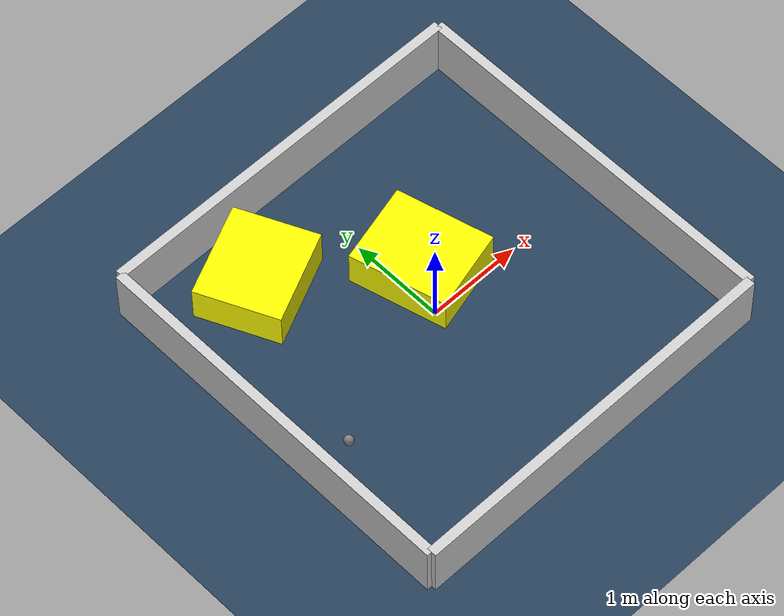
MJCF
<?xml version="1.0" ?>
<mujoco model="generated_environment">
  <option timestep="0.01" integrator="RK4" cone="elliptic"/>
  <default>
    <geom density="1"/>
  </default>
  <asset>
    <texture builtin="gradient" height="3072" rgb1="0.3 0.5 0.7" rgb2="0 0 0" type="skybox" width="512"/>
    <texture builtin="checker" height="300" mark="edge" markrgb="0.8 0.8 0.8" name="groundplane" rgb1="0.2 0.3 0.4" rgb2="0.1 0.2 0.3" type="2d" width="300"/>
    <material name="groundplane" reflectance="0.2" texrepeat="5 5" texture="groundplane" texuniform="true"/>
    <material name="robot" rgba="0.0 1.0 0.0 1"/>
  </asset>
  <worldbody>
    <light dir="0 0 -1" directional="true" pos="0 0 1.5"/>
    <geom condim="4" friction="1.0 0.005 0.001" material="groundplane" name="floor" size="0 0 0.05" type="plane"/>
    <body name="walls">
      <geom name="wall_1" condim="4" pos="-2.0 0.0 0.3" rgba="0.800000011920929 0.800000011920929 0.800000011920929 1.0" size="0.05 2.0 0.3" type="box"/>
      <geom name="wall_2" condim="4" pos="2.0 0.0 0.3" rgba="0.800000011920929 0.800000011920929 0.800000011920929 1.0" size="0.05 2.0 0.3" type="box"/>
      <geom name="wall_3" condim="4" pos="0.0 -2.0 0.3" rgba="0.800000011920929 0.800000011920929 0.800000011920929 1.0" size="2.0 0.05 0.3" type="box"/>
      <geom name="wall_4" condim="4" pos="0.0 2.0 0.3" rgba="0.800000011920929 0.800000011920929 0.800000011920929 1.0" size="2.0 0.05 0.3" type="box"/>
    </body>
    <body name="robot">
      <joint name="joint_x" type="slide" pos="0 0 0" axis="1 0 0"/>
      <joint name="joint_y" type="slide" pos="0 0 0" axis="0 1 0"/>
      <geom name="robot" type="sphere" pos="-1.5690330179724004 -0.5141397380089885 0.2" size="0.05" mass="5." friction="1.0 0.005 0.0001" condim="4"/>
      <site name="sensor_ball"/>
    </body>
    <body name="obstacle_1_movable">
      <geom name="obstacle_1_movable" condim="4" pos="0.234612491749163 0.4209332067326148 0.2" euler="0 0 104.78534674652614" friction="1.0 0.005 0.001" rgba="1 1 0 1" size="0.511425897403675 0.42649136007830146 0.2" type="box" mass="0.1"/>
      <joint type="free"/>
    </body>
    <body name="obstacle_2_movable">
      <geom name="obstacle_2_movable" condim="4" pos="-0.9531235724866438 1.3332601989461907 0.2" euler="0 0 205.05991676121874" friction="1.0 0.005 0.001" rgba="1 1 0 1" size="0.49529794981544645 0.4349047234735033 0.2" type="box" mass="0.1"/>
      <joint type="free"/>
    </body>
  </worldbody>
  <actuator>
    <motor name="actuator_x" joint="joint_x" gear="1" ctrlrange="-1 1"/>
    <motor name="actuator_y" joint="joint_y" gear="1" ctrlrange="-1 1"/>
  </actuator>
</mujoco>
